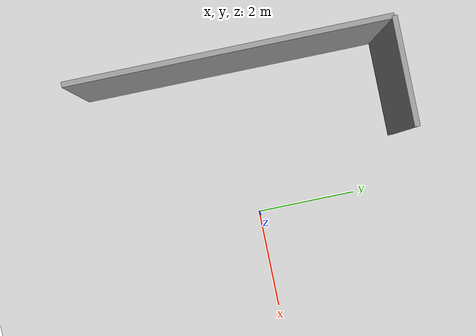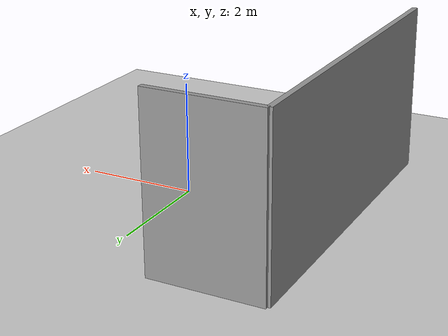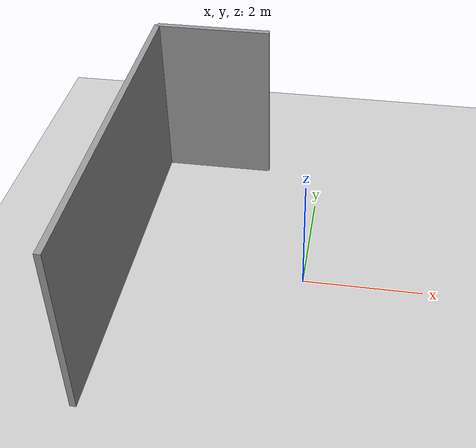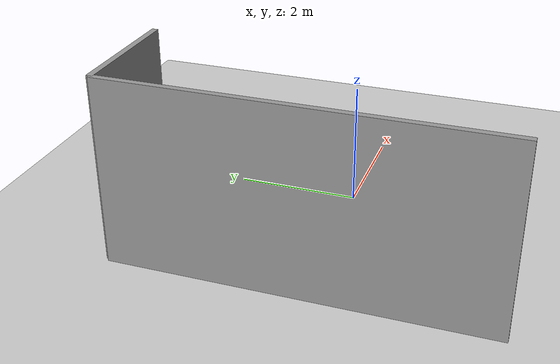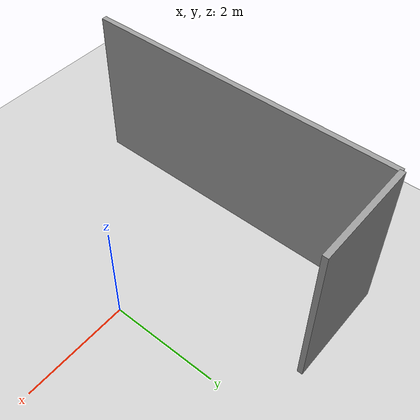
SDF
<?xml version="1.0" ?>

<sdf version="1.6">

  <world name="two_walls">

    <gui fullscreen='0'>
      <camera name='user_camera'>
        <pose frame=''>0 0 10 0 1.5708 0</pose>
        <view_controller>orbit</view_controller>
        <projection_type>perspective</projection_type>
      </camera>
    </gui>

    <physics type="ode">
      <max_step_size>0.001</max_step_size>
      <real_time_factor>1</real_time_factor>
      <real_time_update_rate>1000</real_time_update_rate>
      <gravity>0 0 -9.8</gravity>
    </physics>

    <include>
      <uri>model://sun</uri>
    </include>

    <include>
      <uri>model://ground_plane</uri>
    </include>

    <model name="two_walls">
      <include>
        <uri>model://two_walls</uri>
        <pose>0 0 0 0 0 3.1415926535</pose>
      </include>
    </model>

  </world>

</sdf>

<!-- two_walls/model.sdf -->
<sdf version='1.6'>
  <model name='two_walls'>
    <pose frame=''>0 0 0 0 0 0</pose>
    <link name='Wall_0'>
      <collision name='Wall_0_Collision'>
        <geometry>
          <box>
            <size>2 0.1 3</size>
          </box>
        </geometry>
        <pose frame=''>0 0 1.5 0 -0 0</pose>
      </collision>
      <visual name='Wall_0_Visual'>
        <pose frame=''>0 0 1.5 0 -0 0</pose>
        <geometry>
          <box>
            <size>2 0.1 3</size>
          </box>
        </geometry>
        <material>
          <script>
            <uri>file://media/materials/scripts/gazebo.material</uri>
            <name>Gazebo/Grey</name>
          </script>
          <ambient>1 1 1 1</ambient>
        </material>
        <meta>
          <layer>0</layer>
        </meta>
      </visual>
      <pose frame=''>2 -3 0 0 0 3.14159</pose>
    </link>
    <link name='Wall_1'>
      <collision name='Wall_1_Collision'>
        <geometry>
          <box>
            <size>6 0.1 3</size>
          </box>
        </geometry>
        <pose frame=''>0 0 1.5 0 0 0</pose>
      </collision>
      <visual name='Wall_1_Visual'>
        <pose frame=''>0 0 1.5 0 0 0</pose>
        <geometry>
          <box>
            <size>6 0.1 3</size>
          </box>
        </geometry>
        <material>
          <script>
            <uri>file://media/materials/scripts/gazebo.material</uri>
            <name>Gazebo/Grey</name>
          </script>
          <ambient>1 1 1 1</ambient>
        </material>
        <meta>
          <layer>0</layer>
        </meta>
      </visual>
      <pose frame=''>3 0 0 0 0 -1.5708</pose>
    </link>
    <static>1</static>
  </model>
</sdf>
